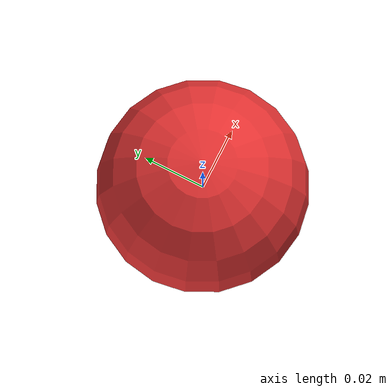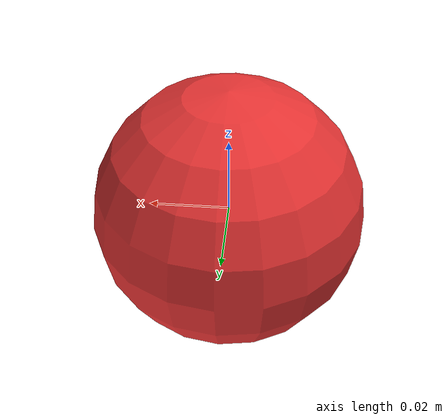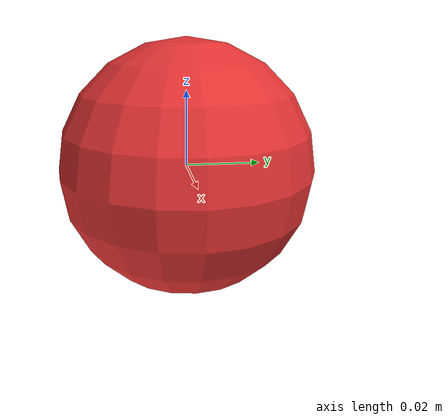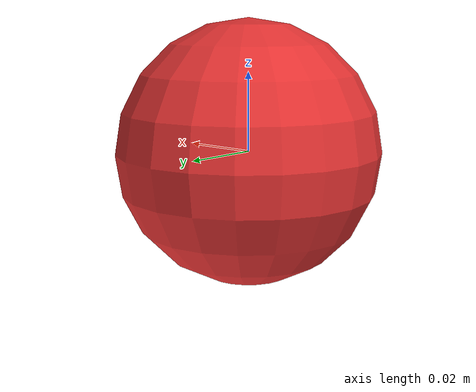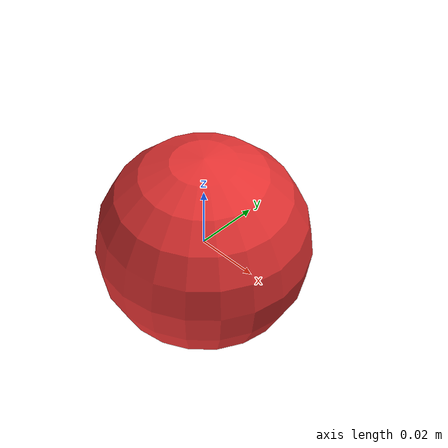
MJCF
<mujoco model="kinova_ball">
  <worldbody>
    <body name="ball">
      <freejoint name="root"/>
      <geom
        name="ball_geom"
        type="sphere"
        size="0.0335"
        mass="0.0657"
        rgba="0.9 0.2 0.2 1"
        contype="1"
        conaffinity="1"
        condim="6"
        friction="1.0 0.2 0.0005"
        solref="0.002 1"
        solimp="0.95 0.995 0.001 0.5 2"/>
    </body>
  </worldbody>
</mujoco>
